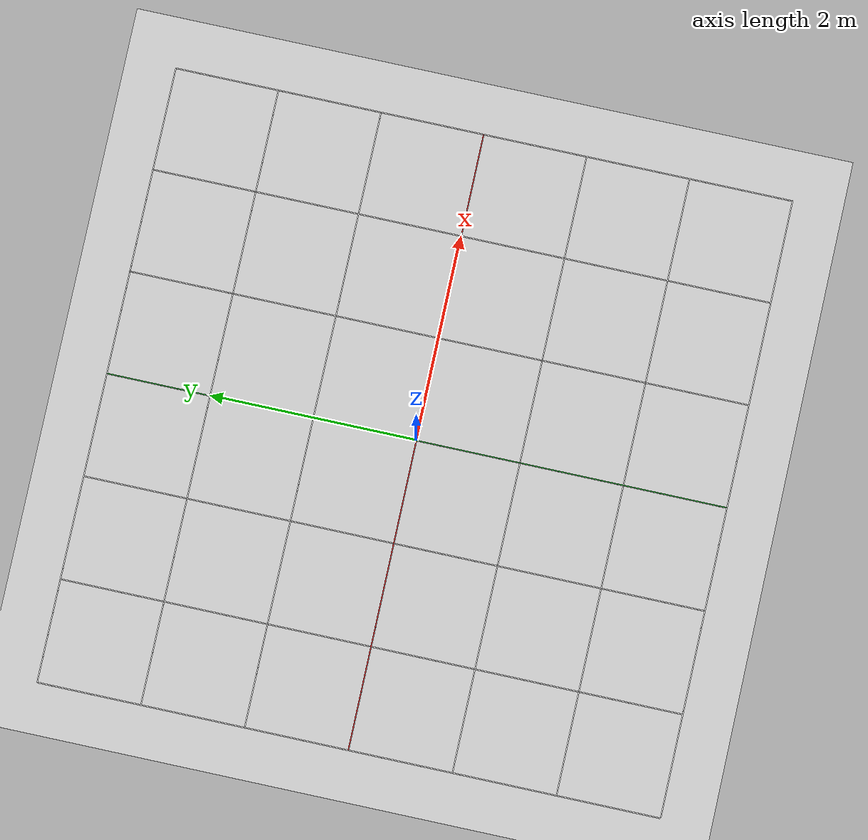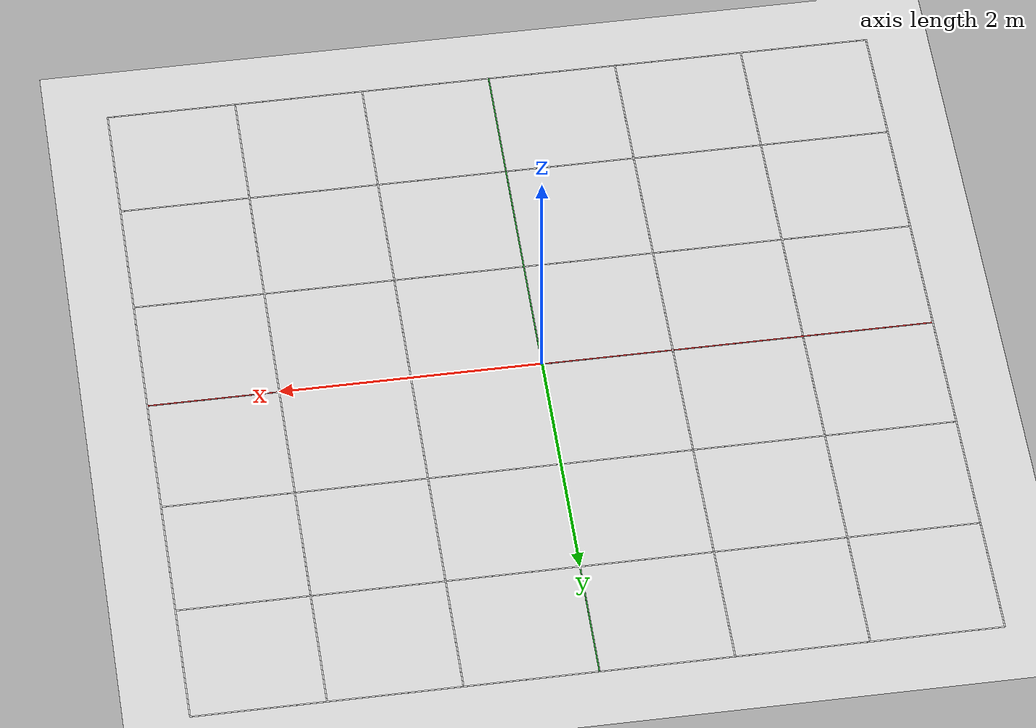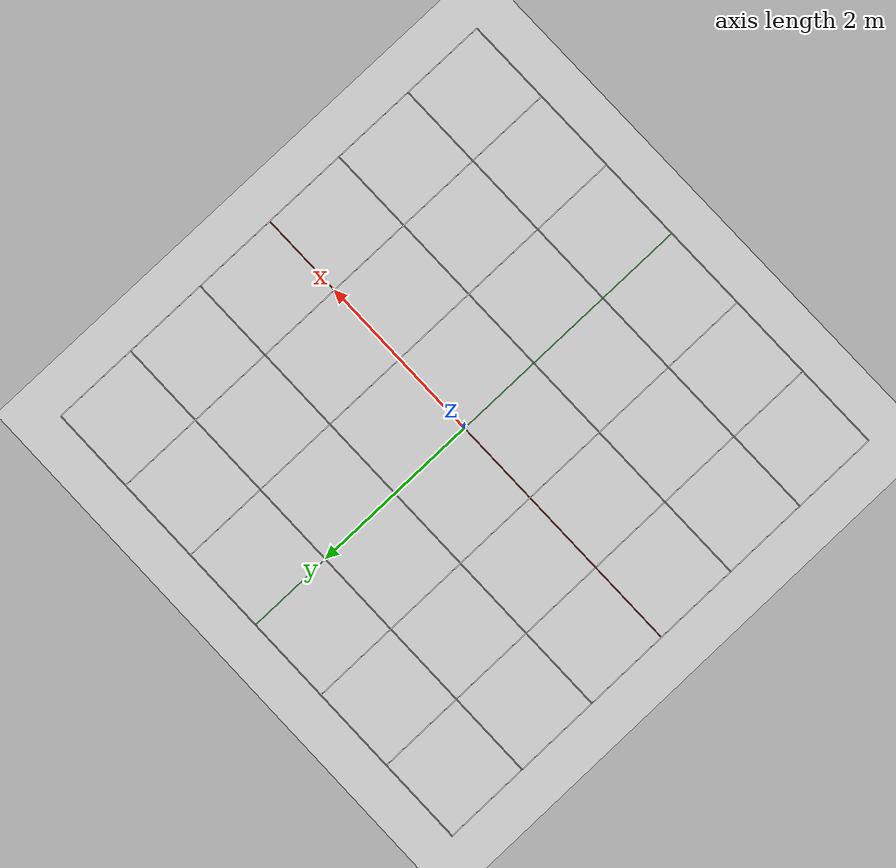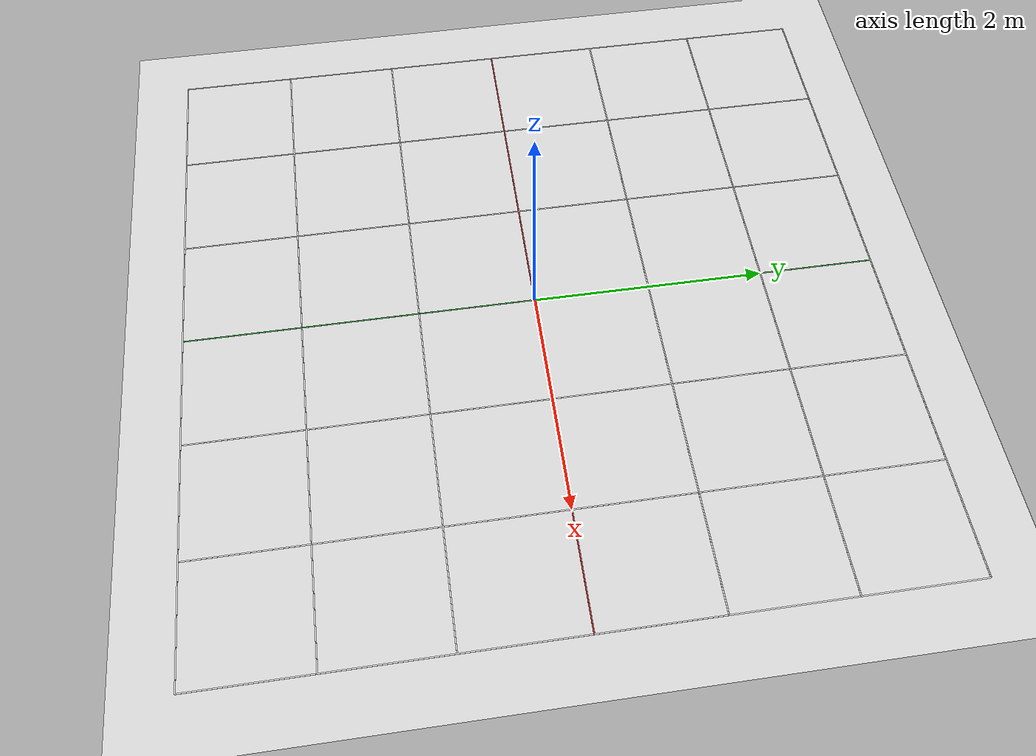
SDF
<?xml version="1.0"?>
<!-- Flat floor with grid lines every 1 m (red = X axis, green = Y axis)
     to visually verify distances computed by forward kinematics. -->
<sdf version="1.6">
  <world name="empty_grid">
    <include><uri>model://sun</uri></include>
    <include><uri>model://ground_plane</uri></include>

    <physics type="ode">
      <max_step_size>0.001</max_step_size>
      <real_time_factor>1.0</real_time_factor>
      <real_time_update_rate>1000</real_time_update_rate>
    </physics>

    <model name="grid_markers">
      <static>true</static>
      <link name="link">
        <visual name="line_x_1">
          <pose>-3 0 0.001 0 0 0</pose>
          <geometry><box><size>0.01 6 0.001</size></box></geometry>
          <material><script><uri>file://media/materials/scripts/gazebo.material</uri><name>Gazebo/White</name></script></material>
        </visual>
        <visual name="line_y_2">
          <pose>0 -3 0.001 0 0 0</pose>
          <geometry><box><size>6 0.01 0.001</size></box></geometry>
          <material><script><uri>file://media/materials/scripts/gazebo.material</uri><name>Gazebo/White</name></script></material>
        </visual>
        <visual name="line_x_3">
          <pose>-2 0 0.001 0 0 0</pose>
          <geometry><box><size>0.01 6 0.001</size></box></geometry>
          <material><script><uri>file://media/materials/scripts/gazebo.material</uri><name>Gazebo/White</name></script></material>
        </visual>
        <visual name="line_y_4">
          <pose>0 -2 0.001 0 0 0</pose>
          <geometry><box><size>6 0.01 0.001</size></box></geometry>
          <material><script><uri>file://media/materials/scripts/gazebo.material</uri><name>Gazebo/White</name></script></material>
        </visual>
        <visual name="line_x_5">
          <pose>-1 0 0.001 0 0 0</pose>
          <geometry><box><size>0.01 6 0.001</size></box></geometry>
          <material><script><uri>file://media/materials/scripts/gazebo.material</uri><name>Gazebo/White</name></script></material>
        </visual>
        <visual name="line_y_6">
          <pose>0 -1 0.001 0 0 0</pose>
          <geometry><box><size>6 0.01 0.001</size></box></geometry>
          <material><script><uri>file://media/materials/scripts/gazebo.material</uri><name>Gazebo/White</name></script></material>
        </visual>
        <visual name="line_x_7">
          <pose>0 0 0.001 0 0 0</pose>
          <geometry><box><size>0.01 6 0.001</size></box></geometry>
          <material><script><uri>file://media/materials/scripts/gazebo.material</uri><name>Gazebo/Green</name></script></material>
        </visual>
        <visual name="line_y_8">
          <pose>0 0 0.001 0 0 0</pose>
          <geometry><box><size>6 0.01 0.001</size></box></geometry>
          <material><script><uri>file://media/materials/scripts/gazebo.material</uri><name>Gazebo/Red</name></script></material>
        </visual>
        <visual name="line_x_9">
          <pose>1 0 0.001 0 0 0</pose>
          <geometry><box><size>0.01 6 0.001</size></box></geometry>
          <material><script><uri>file://media/materials/scripts/gazebo.material</uri><name>Gazebo/White</name></script></material>
        </visual>
        <visual name="line_y_10">
          <pose>0 1 0.001 0 0 0</pose>
          <geometry><box><size>6 0.01 0.001</size></box></geometry>
          <material><script><uri>file://media/materials/scripts/gazebo.material</uri><name>Gazebo/White</name></script></material>
        </visual>
        <visual name="line_x_11">
          <pose>2 0 0.001 0 0 0</pose>
          <geometry><box><size>0.01 6 0.001</size></box></geometry>
          <material><script><uri>file://media/materials/scripts/gazebo.material</uri><name>Gazebo/White</name></script></material>
        </visual>
        <visual name="line_y_12">
          <pose>0 2 0.001 0 0 0</pose>
          <geometry><box><size>6 0.01 0.001</size></box></geometry>
          <material><script><uri>file://media/materials/scripts/gazebo.material</uri><name>Gazebo/White</name></script></material>
        </visual>
        <visual name="line_x_13">
          <pose>3 0 0.001 0 0 0</pose>
          <geometry><box><size>0.01 6 0.001</size></box></geometry>
          <material><script><uri>file://media/materials/scripts/gazebo.material</uri><name>Gazebo/White</name></script></material>
        </visual>
        <visual name="line_y_14">
          <pose>0 3 0.001 0 0 0</pose>
          <geometry><box><size>6 0.01 0.001</size></box></geometry>
          <material><script><uri>file://media/materials/scripts/gazebo.material</uri><name>Gazebo/White</name></script></material>
        </visual>
      </link>
    </model>

    <gui fullscreen="0">
      <camera name="user_camera">
        <pose>-1.5 -2.5 2.5 0 0.6 1.0</pose>
      </camera>
    </gui>
  </world>
</sdf>
